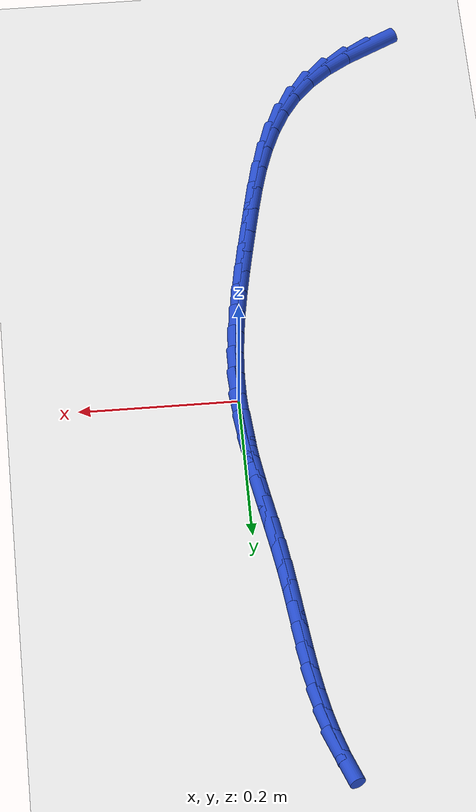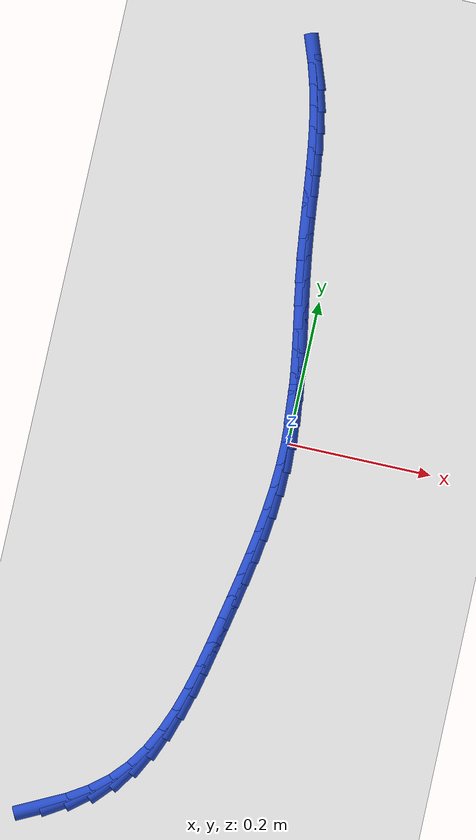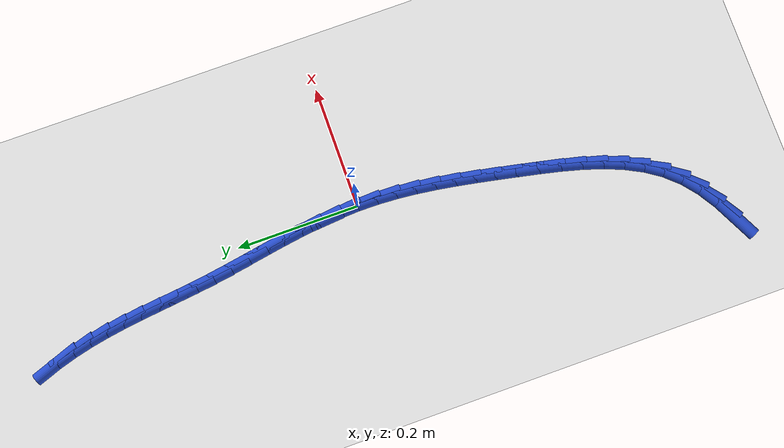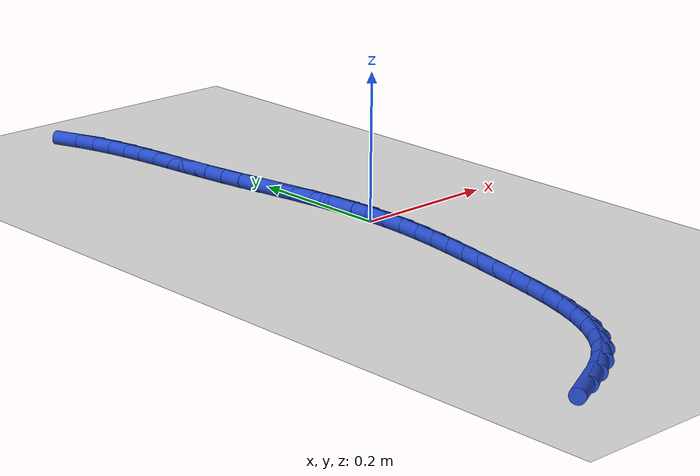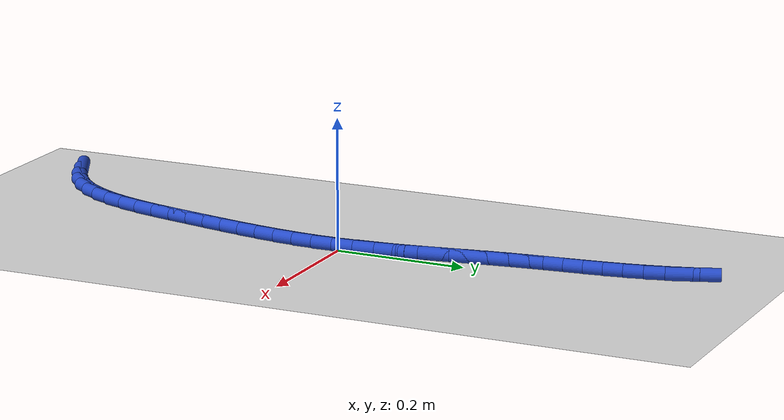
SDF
<sdf version="1.6">
 <world name="default">
  <model name="ground_plane">
   <static>1</static>
   <link name="link">
    <collision name="collision">
     <geometry><plane><normal>0 0 1</normal><size>100 100</size></plane></geometry>
     <surface><friction><ode><mu>100</mu><mu2>50</mu2></ode></friction></surface>
    </collision>
    <visual name="visual">
     <cast_shadows>0</cast_shadows>
     <geometry><plane><normal>0 0 1</normal><size>100 100</size></plane></geometry>
     <material>
      <script><uri>file://media/materials/scripts/gazebo.material</uri><name>Gazebo/WhiteGlow</name></script>
     </material>
    </visual>
   </link>
  </model>
  <model name="line">
   <link name="link_0">
    <pose>0.0 6.938893903907228e-18 0.01 0 1.57 -1.5258611969889966</pose>
    <collision name="collision">
     <geometry><cylinder><radius>0.01</radius><length>0.08</length></cylinder></geometry>
    </collision>
    <visual name="visual">
     <material>
      <script><name>Gazebo/Blue</name><uri>file://media/materials/scripts/gazebo.material</uri></script>
     </material>
     <geometry><cylinder><radius>0.01</radius><length>0.08</length></cylinder></geometry>
    </visual>
   </link>
   <link name="link_1">
    <pose>-0.0014691972529593657 0.03267395187623161 0.01 0 1.57 -1.4818103259888868</pose>
    <collision name="collision">
     <geometry><cylinder><radius>0.01</radius><length>0.08</length></cylinder></geometry>
    </collision>
    <visual name="visual">
     <material>
      <script><name>Gazebo/Blue</name><uri>file://media/materials/scripts/gazebo.material</uri></script>
     </material>
     <geometry><cylinder><radius>0.01</radius><length>0.08</length></cylinder></geometry>
    </visual>
   </link>
   <link name="link_2">
    <pose>-0.004399185523161368 0.06551339230322885 0.01 0 1.57 -1.4479531760077484</pose>
    <collision name="collision">
     <geometry><cylinder><radius>0.01</radius><length>0.08</length></cylinder></geometry>
    </collision>
    <visual name="visual">
     <material>
      <script><name>Gazebo/Blue</name><uri>file://media/materials/scripts/gazebo.material</uri></script>
     </material>
     <geometry><cylinder><radius>0.01</radius><length>0.08</length></cylinder></geometry>
    </visual>
   </link>
   <link name="link_3">
    <pose>-0.00845889065402072 0.09839486448585638 0.01 0 1.57 -1.4237453703894456</pose>
    <collision name="collision">
     <geometry><cylinder><radius>0.01</radius><length>0.08</length></cylinder></geometry>
    </collision>
    <visual name="visual">
     <material>
      <script><name>Gazebo/Blue</name><uri>file://media/materials/scripts/gazebo.material</uri></script>
     </material>
     <geometry><cylinder><radius>0.01</radius><length>0.08</length></cylinder></geometry>
    </visual>
   </link>
   <link name="link_4">
    <pose>-0.013317238488952145 0.1311949116289788 0.01 0 1.57 -1.4088316946596</pose>
    <collision name="collision">
     <geometry><cylinder><radius>0.01</radius><length>0.08</length></cylinder></geometry>
    </collision>
    <visual name="visual">
     <material>
      <script><name>Gazebo/Blue</name><uri>file://media/materials/scripts/gazebo.material</uri></script>
     </material>
     <geometry><cylinder><radius>0.01</radius><length>0.08</length></cylinder></geometry>
    </visual>
   </link>
   <link name="link_5">
    <pose>-0.01864315487137037 0.16379007693746078 0.01 0 1.57 -1.40309752246018</pose>
    <collision name="collision">
     <geometry><cylinder><radius>0.01</radius><length>0.08</length></cylinder></geometry>
    </collision>
    <visual name="visual">
     <material>
      <script><name>Gazebo/Blue</name><uri>file://media/materials/scripts/gazebo.material</uri></script>
     </material>
     <geometry><cylinder><radius>0.01</radius><length>0.08</length></cylinder></geometry>
    </visual>
   </link>
   <link name="link_6">
    <pose>-0.024105565644690127 0.19605690361616698 0.01 0 1.57 -1.4067082490515426</pose>
    <collision name="collision">
     <geometry><cylinder><radius>0.01</radius><length>0.08</length></cylinder></geometry>
    </collision>
    <visual name="visual">
     <material>
      <script><name>Gazebo/Blue</name><uri>file://media/materials/scripts/gazebo.material</uri></script>
     </material>
     <geometry><cylinder><radius>0.01</radius><length>0.08</length></cylinder></geometry>
    </visual>
   </link>
   <link name="link_7">
    <pose>-0.029373396652326127 0.2278719348699619 0.01 0 1.57 -1.4201471205385507</pose>
    <collision name="collision">
     <geometry><cylinder><radius>0.01</radius><length>0.08</length></cylinder></geometry>
    </collision>
    <visual name="visual">
     <material>
      <script><name>Gazebo/Blue</name><uri>file://media/materials/scripts/gazebo.material</uri></script>
     </material>
     <geometry><cylinder><radius>0.01</radius><length>0.08</length></cylinder></geometry>
    </visual>
   </link>
   <link name="link_8">
    <pose>-0.03411557382917909 0.2591117139365208 0.01 0 1.57 -1.4408508744497242</pose>
    <collision name="collision">
     <geometry><cylinder><radius>0.01</radius><length>0.08</length></cylinder></geometry>
    </collision>
    <visual name="visual">
     <material>
      <script><name>Gazebo/Blue</name><uri>file://media/materials/scripts/gazebo.material</uri></script>
     </material>
     <geometry><cylinder><radius>0.01</radius><length>0.08</length></cylinder></geometry>
    </visual>
   </link>
   <link name="link_9">
    <pose>-0.03811193521220985 0.28969256152682127 0.01 0 1.57 -1.4558903674333454</pose>
    <collision name="collision">
     <geometry><cylinder><radius>0.01</radius><length>0.08</length></cylinder></geometry>
    </collision>
    <visual name="visual">
     <material>
      <script><name>Gazebo/Blue</name><uri>file://media/materials/scripts/gazebo.material</uri></script>
     </material>
     <geometry><cylinder><radius>0.01</radius><length>0.08</length></cylinder></geometry>
    </visual>
   </link>
   <link name="link_10">
    <pose>-0.041573545635154155 0.3196854533631289 0.01 0 1.57 -1.4613630848294605</pose>
    <collision name="collision">
     <geometry><cylinder><radius>0.01</radius><length>0.08</length></cylinder></geometry>
    </collision>
    <visual name="visual">
     <material>
      <script><name>Gazebo/Blue</name><uri>file://media/materials/scripts/gazebo.material</uri></script>
     </material>
     <geometry><cylinder><radius>0.01</radius><length>0.08</length></cylinder></geometry>
    </visual>
   </link>
   <link name="link_11">
    <pose>-0.04481625769705502 0.34919894621125214 0.01 0 1.57 -1.4566968560215747</pose>
    <collision name="collision">
     <geometry><cylinder><radius>0.01</radius><length>0.08</length></cylinder></geometry>
    </collision>
    <visual name="visual">
     <material>
      <script><name>Gazebo/Blue</name><uri>file://media/materials/scripts/gazebo.material</uri></script>
     </material>
     <geometry><cylinder><radius>0.01</radius><length>0.08</length></cylinder></geometry>
    </visual>
   </link>
   <link name="link_12">
    <pose>-0.04815592399695554 0.37834159683699936 0.01 0 1.57 -1.441588549745439</pose>
    <collision name="collision">
     <geometry><cylinder><radius>0.01</radius><length>0.08</length></cylinder></geometry>
    </collision>
    <visual name="visual">
     <material>
      <script><name>Gazebo/Blue</name><uri>file://media/materials/scripts/gazebo.material</uri></script>
     </material>
     <geometry><cylinder><radius>0.01</radius><length>0.08</length></cylinder></geometry>
    </visual>
   </link>
   <link name="link_13">
    <pose>-0.05190839713389876 0.4072219620061788 0.01 0 1.57 -1.4160512049310834</pose>
    <collision name="collision">
     <geometry><cylinder><radius>0.01</radius><length>0.08</length></cylinder></geometry>
    </collision>
    <visual name="visual">
     <material>
      <script><name>Gazebo/Blue</name><uri>file://media/materials/scripts/gazebo.material</uri></script>
     </material>
     <geometry><cylinder><radius>0.01</radius><length>0.08</length></cylinder></geometry>
    </visual>
   </link>
   <link name="link_14">
    <pose>-0.056389529706927774 0.435948598484599 0.01 0 1.57 -1.3804725655771617</pose>
    <collision name="collision">
     <geometry><cylinder><radius>0.01</radius><length>0.08</length></cylinder></geometry>
    </collision>
    <visual name="visual">
     <material>
      <script><name>Gazebo/Blue</name><uri>file://media/materials/scripts/gazebo.material</uri></script>
     </material>
     <geometry><cylinder><radius>0.01</radius><length>0.08</length></cylinder></geometry>
    </visual>
   </link>
   <link name="link_15">
    <pose>-0.06191517431508562 0.4646300630380682 0.01 0 1.57 -1.3356709402866982</pose>
    <collision name="collision">
     <geometry><cylinder><radius>0.01</radius><length>0.08</length></cylinder></geometry>
    </collision>
    <visual name="visual">
     <material>
      <script><name>Gazebo/Blue</name><uri>file://media/materials/scripts/gazebo.material</uri></script>
     </material>
     <geometry><cylinder><radius>0.01</radius><length>0.08</length></cylinder></geometry>
    </visual>
   </link>
   <link name="link_16">
    <pose>-0.0688011835574154 0.49337491243239495 0.01 0 1.57 -1.2829224669733459</pose>
    <collision name="collision">
     <geometry><cylinder><radius>0.01</radius><length>0.08</length></cylinder></geometry>
    </collision>
    <visual name="visual">
     <material>
      <script><name>Gazebo/Blue</name><uri>file://media/materials/scripts/gazebo.material</uri></script>
     </material>
     <geometry><cylinder><radius>0.01</radius><length>0.08</length></cylinder></geometry>
    </visual>
   </link>
   <link name="link_17">
    <pose>-0.07736341003296011 0.5222917034333874 0.01 0 1.57 -1.2239293444627077</pose>
    <collision name="collision">
     <geometry><cylinder><radius>0.01</radius><length>0.08</length></cylinder></geometry>
    </collision>
    <visual name="visual">
     <material>
      <script><name>Gazebo/Blue</name><uri>file://media/materials/scripts/gazebo.material</uri></script>
     </material>
     <geometry><cylinder><radius>0.01</radius><length>0.08</length></cylinder></geometry>
    </visual>
   </link>
   <link name="link_221">
    <pose>-0.21980650613007646 -0.5547064784235092 0.01 0 1.57 0.4630161614644116</pose>
    <collision name="collision">
     <geometry><cylinder><radius>0.01</radius><length>0.08</length></cylinder></geometry>
    </collision>
    <visual name="visual">
     <material>
      <script><name>Gazebo/Blue</name><uri>file://media/materials/scripts/gazebo.material</uri></script>
     </material>
     <geometry><cylinder><radius>0.01</radius><length>0.08</length></cylinder></geometry>
    </visual>
   </link>
   <link name="link_222">
    <pose>-0.18844423994280762 -0.539050092052185 0.01 0 1.57 0.5589712639536054</pose>
    <collision name="collision">
     <geometry><cylinder><radius>0.01</radius><length>0.08</length></cylinder></geometry>
    </collision>
    <visual name="visual">
     <material>
      <script><name>Gazebo/Blue</name><uri>file://media/materials/scripts/gazebo.material</uri></script>
     </material>
     <geometry><cylinder><radius>0.01</radius><length>0.08</length></cylinder></geometry>
    </visual>
   </link>
   <link name="link_223">
    <pose>-0.15975707981941153 -0.5211057753477588 0.01 0 1.57 0.6846067015190185</pose>
    <collision name="collision">
     <geometry><cylinder><radius>0.01</radius><length>0.08</length></cylinder></geometry>
    </collision>
    <visual name="visual">
     <material>
      <script><name>Gazebo/Blue</name><uri>file://media/materials/scripts/gazebo.material</uri></script>
     </material>
     <geometry><cylinder><radius>0.01</radius><length>0.08</length></cylinder></geometry>
    </visual>
   </link>
   <link name="link_224">
    <pose>-0.13441771578414163 -0.5004210220071056 0.01 0 1.57 0.8346984647050169</pose>
    <collision name="collision">
     <geometry><cylinder><radius>0.01</radius><length>0.08</length></cylinder></geometry>
    </collision>
    <visual name="visual">
     <material>
      <script><name>Gazebo/Blue</name><uri>file://media/materials/scripts/gazebo.material</uri></script>
     </material>
     <geometry><cylinder><radius>0.01</radius><length>0.08</length></cylinder></geometry>
    </visual>
   </link>
   <link name="link_225">
    <pose>-0.11291531135507425 -0.47668662083458724 0.01 0 1.57 0.9751073668939355</pose>
    <collision name="collision">
     <geometry><cylinder><radius>0.01</radius><length>0.08</length></cylinder></geometry>
    </collision>
    <visual name="visual">
     <material>
      <script><name>Gazebo/Blue</name><uri>file://media/materials/scripts/gazebo.material</uri></script>
     </material>
     <geometry><cylinder><radius>0.01</radius><length>0.08</length></cylinder></geometry>
    </visual>
   </link>
   <link name="link_226">
    <pose>-0.09496200864726254 -0.4502000488333898 0.01 0 1.57 1.0931473533450402</pose>
    <collision name="collision">
     <geometry><cylinder><radius>0.01</radius><length>0.08</length></cylinder></geometry>
    </collision>
    <visual name="visual">
     <material>
      <script><name>Gazebo/Blue</name><uri>file://media/materials/scripts/gazebo.material</uri></script>
     </material>
     <geometry><cylinder><radius>0.01</radius><length>0.08</length></cylinder></geometry>
    </visual>
   </link>
   <link name="link_227">
    <pose>-0.08006434573091777 -0.42141931596904836 0.01 0 1.57 1.187794016963894</pose>
    <collision name="collision">
     <geometry><cylinder><radius>0.01</radius><length>0.08</length></cylinder></geometry>
    </collision>
    <visual name="visual">
     <material>
      <script><name>Gazebo/Blue</name><uri>file://media/materials/scripts/gazebo.material</uri></script>
     </material>
     <geometry><cylinder><radius>0.01</radius><length>0.08</length></cylinder></geometry>
    </visual>
   </link>
   <link name="link_228">
    <pose>-0.06772885935694636 -0.39080243323719394 0.01 0 1.57 1.260289361599723</pose>
    <collision name="collision">
     <geometry><cylinder><radius>0.01</radius><length>0.08</length></cylinder></geometry>
    </collision>
    <visual name="visual">
     <material>
      <script><name>Gazebo/Blue</name><uri>file://media/materials/scripts/gazebo.material</uri></script>
     </material>
     <geometry><cylinder><radius>0.01</radius><length>0.08</length></cylinder></geometry>
    </visual>
   </link>
   <link name="link_229">
    <pose>-0.057462086276254744 -0.3588074116334574 0.01 0 1.57 1.3126305785019177</pose>
    <collision name="collision">
     <geometry><cylinder><radius>0.01</radius><length>0.08</length></cylinder></geometry>
    </collision>
    <visual name="visual">
     <material>
      <script><name>Gazebo/Blue</name><uri>file://media/materials/scripts/gazebo.material</uri></script>
     </material>
     <geometry><cylinder><radius>0.01</radius><length>0.08</length></cylinder></geometry>
    </visual>
   </link>
   <link name="link_230">
    <pose>-0.048770563239749154 -0.32589226215346895 0.01 0 1.57 1.3466362707142552</pose>
    <collision name="collision">
     <geometry><cylinder><radius>0.01</radius><length>0.08</length></cylinder></geometry>
    </collision>
    <visual name="visual">
     <material>
      <script><name>Gazebo/Blue</name><uri>file://media/materials/scripts/gazebo.material</uri></script>
     </material>
     <geometry><cylinder><radius>0.01</radius><length>0.08</length></cylinder></geometry>
    </visual>
   </link>
   <link name="link_231">
    <pose>-0.041160826998336494 -0.2925149957928615 0.01 0 1.57 1.363479236831734</pose>
    <collision name="collision">
     <geometry><cylinder><radius>0.01</radius><length>0.08</length></cylinder></geometry>
    </collision>
    <visual name="visual">
     <material>
      <script><name>Gazebo/Blue</name><uri>file://media/materials/scripts/gazebo.material</uri></script>
     </material>
     <geometry><cylinder><radius>0.01</radius><length>0.08</length></cylinder></geometry>
    </visual>
   </link>
   <link name="link_232">
    <pose>-0.03413941430292291 -0.259133623547265 0.01 0 1.57 1.3673283651738748</pose>
    <collision name="collision">
     <geometry><cylinder><radius>0.01</radius><length>0.08</length></cylinder></geometry>
    </collision>
    <visual name="visual">
     <material>
      <script><name>Gazebo/Blue</name><uri>file://media/materials/scripts/gazebo.material</uri></script>
     </material>
     <geometry><cylinder><radius>0.01</radius><length>0.08</length></cylinder></geometry>
    </visual>
   </link>
   <link name="link_233">
    <pose>-0.027327287036716663 -0.2261168224280588 0.01 0 1.57 1.3739675343587656</pose>
    <collision name="collision">
     <geometry><cylinder><radius>0.01</radius><length>0.08</length></cylinder></geometry>
    </collision>
    <visual name="visual">
     <material>
      <script><name>Gazebo/Blue</name><uri>file://media/materials/scripts/gazebo.material</uri></script>
     </material>
     <geometry><cylinder><radius>0.01</radius><length>0.08</length></cylinder></geometry>
    </visual>
   </link>
   <link name="link_234">
    <pose>-0.020816293957250615 -0.1934656386668363 0.01 0 1.57 1.387662447028326</pose>
    <collision name="collision">
     <geometry><cylinder><radius>0.01</radius><length>0.08</length></cylinder></geometry>
    </collision>
    <visual name="visual">
     <material>
      <script><name>Gazebo/Blue</name><uri>file://media/materials/scripts/gazebo.material</uri></script>
     </material>
     <geometry><cylinder><radius>0.01</radius><length>0.08</length></cylinder></geometry>
    </visual>
   </link>
   <link name="link_235">
    <pose>-0.014819396548480147 -0.16108656337275146 0.01 0 1.57 1.408577186903549</pose>
    <collision name="collision">
     <geometry><cylinder><radius>0.01</radius><length>0.08</length></cylinder></geometry>
    </collision>
    <visual name="visual">
     <material>
      <script><name>Gazebo/Blue</name><uri>file://media/materials/scripts/gazebo.material</uri></script>
     </material>
     <geometry><cylinder><radius>0.01</radius><length>0.08</length></cylinder></geometry>
    </visual>
   </link>
   <link name="link_236">
    <pose>-0.009549556394260646 -0.12888608757696463 0.01 0 1.57 1.4367836144608808</pose>
    <collision name="collision">
     <geometry><cylinder><radius>0.01</radius><length>0.08</length></cylinder></geometry>
    </collision>
    <visual name="visual">
     <material>
      <script><name>Gazebo/Blue</name><uri>file://media/materials/scripts/gazebo.material</uri></script>
     </material>
     <geometry><cylinder><radius>0.01</radius><length>0.08</length></cylinder></geometry>
    </visual>
   </link>
   <link name="link_237">
    <pose>-0.00521973507844749 -0.0967707023106359 0.01 0 1.57 1.4722231685371392</pose>
    <collision name="collision">
     <geometry><cylinder><radius>0.01</radius><length>0.08</length></cylinder></geometry>
    </collision>
    <visual name="visual">
     <material>
      <script><name>Gazebo/Blue</name><uri>file://media/materials/scripts/gazebo.material</uri></script>
     </material>
     <geometry><cylinder><radius>0.01</radius><length>0.08</length></cylinder></geometry>
    </visual>
   </link>
   <link name="link_238">
    <pose>-0.002042894184896002 -0.06464689860492473 0.01 0 1.57 1.514661173800162</pose>
    <collision name="collision">
     <geometry><cylinder><radius>0.01</radius><length>0.08</length></cylinder></geometry>
    </collision>
    <visual name="visual">
     <material>
      <script><name>Gazebo/Blue</name><uri>file://media/materials/scripts/gazebo.material</uri></script>
     </material>
     <geometry><cylinder><radius>0.01</radius><length>0.08</length></cylinder></geometry>
    </visual>
   </link>
   <link name="link_239">
    <pose>-0.0002319952974617406 -0.03242116749099293 0.01 0 1.57 1.5636407751640717</pose>
    <collision name="collision">
     <geometry><cylinder><radius>0.01</radius><length>0.08</length></cylinder></geometry>
    </collision>
    <visual name="visual">
     <material>
      <script><name>Gazebo/Blue</name><uri>file://media/materials/scripts/gazebo.material</uri></script>
     </material>
     <geometry><cylinder><radius>0.01</radius><length>0.08</length></cylinder></geometry>
    </visual>
   </link>
   <link name="link_240">
    <pose>1.734723475976807e-17 4.85722573273506e-17 0.01 0 1.57 -1.5231447319157554</pose>
    <collision name="collision">
     <geometry><cylinder><radius>0.01</radius><length>0.08</length></cylinder></geometry>
    </collision>
    <visual name="visual">
     <material>
      <script><name>Gazebo/Blue</name><uri>file://media/materials/scripts/gazebo.material</uri></script>
     </material>
     <geometry><cylinder><radius>0.01</radius><length>0.08</length></cylinder></geometry>
    </visual>
   </link>
   <link name="link_241">
    <pose>-0.001559869876366124 0.03271011283689406 0.01 0 1.57 -1.463491132934768</pose>
    <collision name="collision">
     <geometry><cylinder><radius>0.01</radius><length>0.08</length></cylinder></geometry>
    </collision>
    <visual name="visual">
     <material>
      <script><name>Gazebo/Blue</name><uri>file://media/materials/scripts/gazebo.material</uri></script>
     </material>
     <geometry><cylinder><radius>0.01</radius><length>0.08</length></cylinder></geometry>
    </visual>
   </link>
   <link name="link_242">
    <pose>-0.005124566510415542 0.06580267998852887 0.01 0 1.57 -1.4930754198085288</pose>
    <collision name="collision">
     <geometry><cylinder><radius>0.01</radius><length>0.08</length></cylinder></geometry>
    </collision>
    <visual name="visual">
     <material>
      <script><name>Gazebo/Blue</name><uri>file://media/materials/scripts/gazebo.material</uri></script>
     </material>
     <geometry><cylinder><radius>0.01</radius><length>0.08</length></cylinder></geometry>
    </visual>
   </link>
  </model>
 </world>
</sdf>
